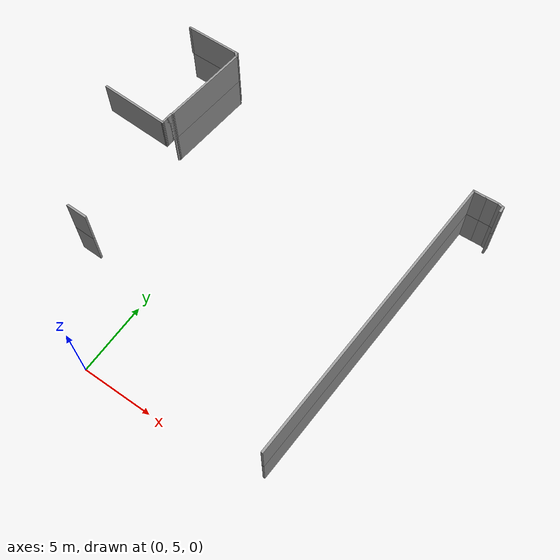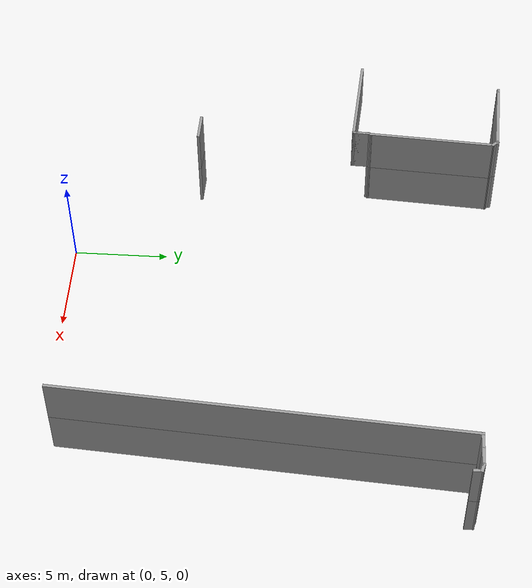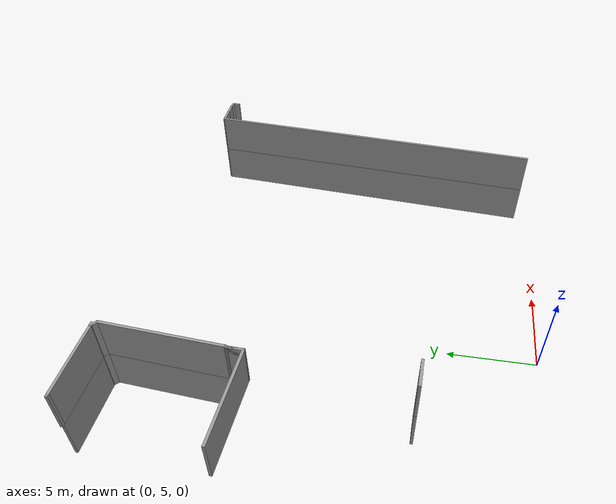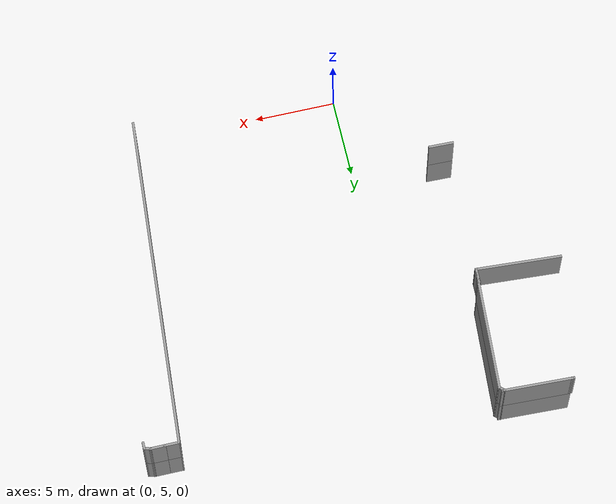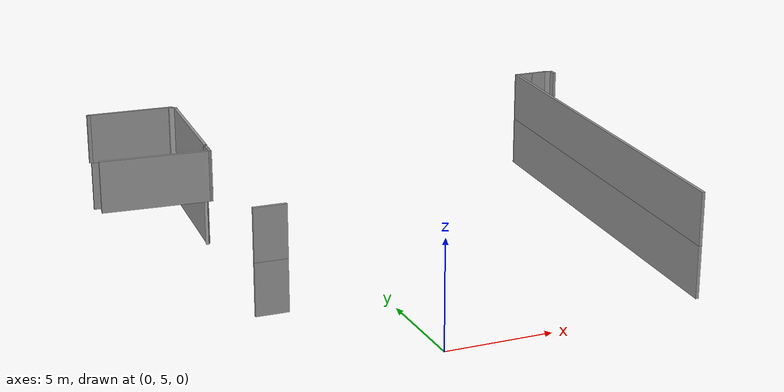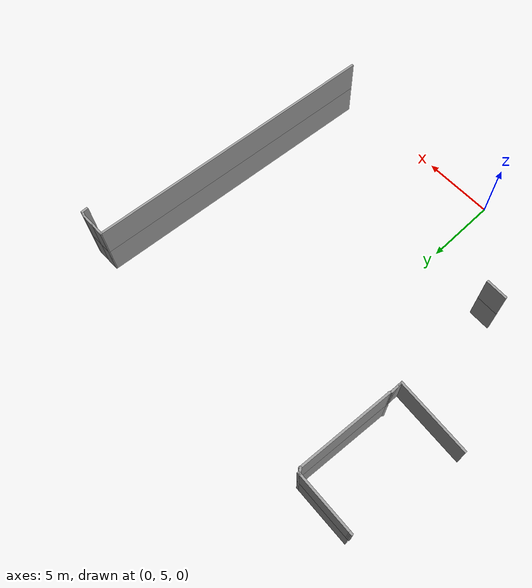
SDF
<sdf version="1.7">
 <model name="EnvDC01">
  <link name="Wall_257">
   <pose>-7.00626 27.834 0 0 0 -0.041325</pose>
   <visual name="Wall_257_Visual">
    <pose>0 0 1.25 0 -0 0</pose>
    <geometry><box><size>4.20657 0.15 2.5</size></box></geometry>
    <material>
     <script><uri>file://media/materials/scripts/gazebo.material</uri><name>Gazebo/Grey</name></script>
     <ambient>1 1 1 1</ambient>
     <shader type="pixel"/>
    </material>
    <meta><layer>0</layer></meta>
   </visual>
   <collision name="Wall_257_Collision">
    <pose>0 0 1.25 0 -0 0</pose>
    <geometry><box><size>4.20657 0.15 2.5</size></box></geometry>
    <surface>
     <friction>
      <ode><mu>1</mu><mu2>1</mu2><fdir1>0 0 0</fdir1><slip1>0</slip1><slip2>0</slip2></ode>
      <torsional>
       <coefficient>1</coefficient>
       <patch_radius>0</patch_radius>
       <surface_radius>0</surface_radius>
       <use_patch_radius>1</use_patch_radius>
       <ode><slip>0</slip></ode>
      </torsional>
     </friction>
     <bounce><restitution_coefficient>0</restitution_coefficient><threshold>1e+06</threshold></bounce>
     <contact>
      <collide_without_contact>0</collide_without_contact>
      <collide_without_contact_bitmask>1</collide_without_contact_bitmask>
      <collide_bitmask>1</collide_bitmask>
      <ode>
       <soft_cfm>0</soft_cfm>
       <soft_erp>0.2</soft_erp>
       <kp>1e+13</kp>
       <kd>1</kd>
       <max_vel>0.01</max_vel>
       <min_depth>0</min_depth>
      </ode>
      <bullet>
       <split_impulse>1</split_impulse>
       <split_impulse_penetration_threshold>-0.01</split_impulse_penetration_threshold>
       <soft_cfm>0</soft_cfm>
       <soft_erp>0.2</soft_erp>
       <kp>1e+13</kp>
       <kd>1</kd>
      </bullet>
     </contact>
    </surface>
   </collision>
  </link>
  <link name="Wall_258">
   <pose>-4.9297 27.7502 0 0 -0 0</pose>
   <visual name="Wall_258_Visual">
    <pose>0 0 1.25 0 -0 0</pose>
    <geometry><box><size>0.25 0.15 2.5</size></box></geometry>
    <material>
     <script><uri>file://media/materials/scripts/gazebo.material</uri><name>Gazebo/Grey</name></script>
     <ambient>1 1 1 1</ambient>
     <shader type="pixel"/>
    </material>
    <meta><layer>0</layer></meta>
   </visual>
   <collision name="Wall_258_Collision">
    <pose>0 0 1.25 0 -0 0</pose>
    <geometry><box><size>0.25 0.15 2.5</size></box></geometry>
    <surface>
     <friction>
      <ode><mu>1</mu><mu2>1</mu2><fdir1>0 0 0</fdir1><slip1>0</slip1><slip2>0</slip2></ode>
      <torsional>
       <coefficient>1</coefficient>
       <patch_radius>0</patch_radius>
       <surface_radius>0</surface_radius>
       <use_patch_radius>1</use_patch_radius>
       <ode><slip>0</slip></ode>
      </torsional>
     </friction>
     <bounce><restitution_coefficient>0</restitution_coefficient><threshold>1e+06</threshold></bounce>
     <contact>
      <collide_without_contact>0</collide_without_contact>
      <collide_without_contact_bitmask>1</collide_without_contact_bitmask>
      <collide_bitmask>1</collide_bitmask>
      <ode>
       <soft_cfm>0</soft_cfm>
       <soft_erp>0.2</soft_erp>
       <kp>1e+13</kp>
       <kd>1</kd>
       <max_vel>0.01</max_vel>
       <min_depth>0</min_depth>
      </ode>
      <bullet>
       <split_impulse>1</split_impulse>
       <split_impulse_penetration_threshold>-0.01</split_impulse_penetration_threshold>
       <soft_cfm>0</soft_cfm>
       <soft_erp>0.2</soft_erp>
       <kp>1e+13</kp>
       <kd>1</kd>
      </bullet>
     </contact>
    </surface>
   </collision>
  </link>
  <link name="Wall_260">
   <pose>-4.85596 27.6265 0 0 0 -0.785398</pose>
   <visual name="Wall_260_Visual">
    <pose>0 0 1.25 0 -0 0</pose>
    <geometry><box><size>0.5 0.15 2.5</size></box></geometry>
    <material>
     <script><uri>file://media/materials/scripts/gazebo.material</uri><name>Gazebo/Grey</name></script>
     <ambient>1 1 1 1</ambient>
     <shader type="pixel"/>
    </material>
    <meta><layer>0</layer></meta>
   </visual>
   <collision name="Wall_260_Collision">
    <pose>0 0 1.25 0 -0 0</pose>
    <geometry><box><size>0.5 0.15 2.5</size></box></geometry>
    <surface>
     <friction>
      <ode><mu>1</mu><mu2>1</mu2><fdir1>0 0 0</fdir1><slip1>0</slip1><slip2>0</slip2></ode>
      <torsional>
       <coefficient>1</coefficient>
       <patch_radius>0</patch_radius>
       <surface_radius>0</surface_radius>
       <use_patch_radius>1</use_patch_radius>
       <ode><slip>0</slip></ode>
      </torsional>
     </friction>
     <bounce><restitution_coefficient>0</restitution_coefficient><threshold>1e+06</threshold></bounce>
     <contact>
      <collide_without_contact>0</collide_without_contact>
      <collide_without_contact_bitmask>1</collide_without_contact_bitmask>
      <collide_bitmask>1</collide_bitmask>
      <ode>
       <soft_cfm>0</soft_cfm>
       <soft_erp>0.2</soft_erp>
       <kp>1e+13</kp>
       <kd>1</kd>
       <max_vel>0.01</max_vel>
       <min_depth>0</min_depth>
      </ode>
      <bullet>
       <split_impulse>1</split_impulse>
       <split_impulse_penetration_threshold>-0.01</split_impulse_penetration_threshold>
       <soft_cfm>0</soft_cfm>
       <soft_erp>0.2</soft_erp>
       <kp>1e+13</kp>
       <kd>1</kd>
      </bullet>
     </contact>
    </surface>
   </collision>
  </link>
  <link name="Wall_261">
   <pose>-4.96918 24.2046 0 0 0 -1.64252</pose>
   <visual name="Wall_261_Visual">
    <pose>0 0 1.25 0 -0 0</pose>
    <geometry><box><size>6.76321 0.15 2.5</size></box></geometry>
    <material>
     <script><uri>file://media/materials/scripts/gazebo.material</uri><name>Gazebo/Grey</name></script>
     <ambient>1 1 1 1</ambient>
     <shader type="pixel"/>
    </material>
    <meta><layer>0</layer></meta>
   </visual>
   <collision name="Wall_261_Collision">
    <pose>0 0 1.25 0 -0 0</pose>
    <geometry><box><size>6.76321 0.15 2.5</size></box></geometry>
    <surface>
     <friction>
      <ode><mu>1</mu><mu2>1</mu2><fdir1>0 0 0</fdir1><slip1>0</slip1><slip2>0</slip2></ode>
      <torsional>
       <coefficient>1</coefficient>
       <patch_radius>0</patch_radius>
       <surface_radius>0</surface_radius>
       <use_patch_radius>1</use_patch_radius>
       <ode><slip>0</slip></ode>
      </torsional>
     </friction>
     <bounce><restitution_coefficient>0</restitution_coefficient><threshold>1e+06</threshold></bounce>
     <contact>
      <collide_without_contact>0</collide_without_contact>
      <collide_without_contact_bitmask>1</collide_without_contact_bitmask>
      <collide_bitmask>1</collide_bitmask>
      <ode>
       <soft_cfm>0</soft_cfm>
       <soft_erp>0.2</soft_erp>
       <kp>1e+13</kp>
       <kd>1</kd>
       <max_vel>0.01</max_vel>
       <min_depth>0</min_depth>
      </ode>
      <bullet>
       <split_impulse>1</split_impulse>
       <split_impulse_penetration_threshold>-0.01</split_impulse_penetration_threshold>
       <soft_cfm>0</soft_cfm>
       <soft_erp>0.2</soft_erp>
       <kp>1e+13</kp>
       <kd>1</kd>
      </bullet>
     </contact>
    </surface>
   </collision>
  </link>
  <link name="Wall_262">
   <pose>-5.23115 20.8632 0 0 0 -2.0944</pose>
   <visual name="Wall_262_Visual">
    <pose>0 0 1.25 0 -0 0</pose>
    <geometry><box><size>0.25 0.15 2.5</size></box></geometry>
    <material>
     <script><uri>file://media/materials/scripts/gazebo.material</uri><name>Gazebo/Grey</name></script>
     <ambient>1 1 1 1</ambient>
     <shader type="pixel"/>
    </material>
    <meta><layer>0</layer></meta>
   </visual>
   <collision name="Wall_262_Collision">
    <pose>0 0 1.25 0 -0 0</pose>
    <geometry><box><size>0.25 0.15 2.5</size></box></geometry>
    <surface>
     <friction>
      <ode><mu>1</mu><mu2>1</mu2><fdir1>0 0 0</fdir1><slip1>0</slip1><slip2>0</slip2></ode>
      <torsional>
       <coefficient>1</coefficient>
       <patch_radius>0</patch_radius>
       <surface_radius>0</surface_radius>
       <use_patch_radius>1</use_patch_radius>
       <ode><slip>0</slip></ode>
      </torsional>
     </friction>
     <bounce><restitution_coefficient>0</restitution_coefficient><threshold>1e+06</threshold></bounce>
     <contact>
      <collide_without_contact>0</collide_without_contact>
      <collide_without_contact_bitmask>1</collide_without_contact_bitmask>
      <collide_bitmask>1</collide_bitmask>
      <ode>
       <soft_cfm>0</soft_cfm>
       <soft_erp>0.2</soft_erp>
       <kp>1e+13</kp>
       <kd>1</kd>
       <max_vel>0.01</max_vel>
       <min_depth>0</min_depth>
      </ode>
      <bullet>
       <split_impulse>1</split_impulse>
       <split_impulse_penetration_threshold>-0.01</split_impulse_penetration_threshold>
       <soft_cfm>0</soft_cfm>
       <soft_erp>0.2</soft_erp>
       <kp>1e+13</kp>
       <kd>1</kd>
      </bullet>
     </contact>
    </surface>
   </collision>
  </link>
  <link name="Wall_269">
   <pose>16.2758 26.2797 2.5 0 0 -1.5708</pose>
   <visual name="Wall_269_Visual">
    <pose>0 0 1.25 0 -0 0</pose>
    <geometry><box><size>0.5 0.15 2.5</size></box></geometry>
    <material>
     <script><uri>file://media/materials/scripts/gazebo.material</uri><name>Gazebo/Grey</name></script>
     <ambient>1 1 1 1</ambient>
     <shader type="pixel"/>
    </material>
    <meta><layer>1</layer></meta>
   </visual>
   <collision name="Wall_269_Collision">
    <pose>0 0 1.25 0 -0 0</pose>
    <geometry><box><size>0.5 0.15 2.5</size></box></geometry>
    <surface>
     <friction>
      <ode><mu>1</mu><mu2>1</mu2><fdir1>0 0 0</fdir1><slip1>0</slip1><slip2>0</slip2></ode>
      <torsional>
       <coefficient>1</coefficient>
       <patch_radius>0</patch_radius>
       <surface_radius>0</surface_radius>
       <use_patch_radius>1</use_patch_radius>
       <ode><slip>0</slip></ode>
      </torsional>
     </friction>
     <bounce><restitution_coefficient>0</restitution_coefficient><threshold>1e+06</threshold></bounce>
     <contact>
      <collide_without_contact>0</collide_without_contact>
      <collide_without_contact_bitmask>1</collide_without_contact_bitmask>
      <collide_bitmask>1</collide_bitmask>
      <ode>
       <soft_cfm>0</soft_cfm>
       <soft_erp>0.2</soft_erp>
       <kp>1e+13</kp>
       <kd>1</kd>
       <max_vel>0.01</max_vel>
       <min_depth>0</min_depth>
      </ode>
      <bullet>
       <split_impulse>1</split_impulse>
       <split_impulse_penetration_threshold>-0.01</split_impulse_penetration_threshold>
       <soft_cfm>0</soft_cfm>
       <soft_erp>0.2</soft_erp>
       <kp>1e+13</kp>
       <kd>1</kd>
      </bullet>
     </contact>
    </surface>
   </collision>
  </link>
  <link name="Wall_270">
   <pose>16.1067 26.5 2.5 0 -0 2.87979</pose>
   <visual name="Wall_270_Visual">
    <pose>0 0 1.25 0 -0 0</pose>
    <geometry><box><size>0.5 0.15 2.5</size></box></geometry>
    <material>
     <script><uri>file://media/materials/scripts/gazebo.material</uri><name>Gazebo/Grey</name></script>
     <ambient>1 1 1 1</ambient>
     <shader type="pixel"/>
    </material>
    <meta><layer>1</layer></meta>
   </visual>
   <collision name="Wall_270_Collision">
    <pose>0 0 1.25 0 -0 0</pose>
    <geometry><box><size>0.5 0.15 2.5</size></box></geometry>
    <surface>
     <friction>
      <ode><mu>1</mu><mu2>1</mu2><fdir1>0 0 0</fdir1><slip1>0</slip1><slip2>0</slip2></ode>
      <torsional>
       <coefficient>1</coefficient>
       <patch_radius>0</patch_radius>
       <surface_radius>0</surface_radius>
       <use_patch_radius>1</use_patch_radius>
       <ode><slip>0</slip></ode>
      </torsional>
     </friction>
     <bounce><restitution_coefficient>0</restitution_coefficient><threshold>1e+06</threshold></bounce>
     <contact>
      <collide_without_contact>0</collide_without_contact>
      <collide_without_contact_bitmask>1</collide_without_contact_bitmask>
      <collide_bitmask>1</collide_bitmask>
      <ode>
       <soft_cfm>0</soft_cfm>
       <soft_erp>0.2</soft_erp>
       <kp>1e+13</kp>
       <kd>1</kd>
       <max_vel>0.01</max_vel>
       <min_depth>0</min_depth>
      </ode>
      <bullet>
       <split_impulse>1</split_impulse>
       <split_impulse_penetration_threshold>-0.01</split_impulse_penetration_threshold>
       <soft_cfm>0</soft_cfm>
       <soft_erp>0.2</soft_erp>
       <kp>1e+13</kp>
       <kd>1</kd>
      </bullet>
     </contact>
    </surface>
   </collision>
  </link>
  <link name="Wall_271">
   <pose>15.5127 26.5453 2.5 0 -0 3.14159</pose>
   <visual name="Wall_271_Visual">
    <pose>0 0 1.25 0 -0 0</pose>
    <geometry><box><size>1 0.15 2.5</size></box></geometry>
    <material>
     <script><uri>file://media/materials/scripts/gazebo.material</uri><name>Gazebo/Grey</name></script>
     <ambient>1 1 1 1</ambient>
     <shader type="pixel"/>
    </material>
    <meta><layer>1</layer></meta>
   </visual>
   <collision name="Wall_271_Collision">
    <pose>0 0 1.25 0 -0 0</pose>
    <geometry><box><size>1 0.15 2.5</size></box></geometry>
    <surface>
     <friction>
      <ode><mu>1</mu><mu2>1</mu2><fdir1>0 0 0</fdir1><slip1>0</slip1><slip2>0</slip2></ode>
      <torsional>
       <coefficient>1</coefficient>
       <patch_radius>0</patch_radius>
       <surface_radius>0</surface_radius>
       <use_patch_radius>1</use_patch_radius>
       <ode><slip>0</slip></ode>
      </torsional>
     </friction>
     <bounce><restitution_coefficient>0</restitution_coefficient><threshold>1e+06</threshold></bounce>
     <contact>
      <collide_without_contact>0</collide_without_contact>
      <collide_without_contact_bitmask>1</collide_without_contact_bitmask>
      <collide_bitmask>1</collide_bitmask>
      <ode>
       <soft_cfm>0</soft_cfm>
       <soft_erp>0.2</soft_erp>
       <kp>1e+13</kp>
       <kd>1</kd>
       <max_vel>0.01</max_vel>
       <min_depth>0</min_depth>
      </ode>
      <bullet>
       <split_impulse>1</split_impulse>
       <split_impulse_penetration_threshold>-0.01</split_impulse_penetration_threshold>
       <soft_cfm>0</soft_cfm>
       <soft_erp>0.2</soft_erp>
       <kp>1e+13</kp>
       <kd>1</kd>
      </bullet>
     </contact>
    </surface>
   </collision>
  </link>
  <link name="Wall_272">
   <pose>14.6627 26.5453 2.5 0 -0 3.14159</pose>
   <visual name="Wall_272_Visual">
    <pose>0 0 1.25 0 -0 0</pose>
    <geometry><box><size>1 0.15 2.5</size></box></geometry>
    <material>
     <script><uri>file://media/materials/scripts/gazebo.material</uri><name>Gazebo/Grey</name></script>
     <ambient>1 1 1 1</ambient>
     <shader type="pixel"/>
    </material>
    <meta><layer>1</layer></meta>
   </visual>
   <collision name="Wall_272_Collision">
    <pose>0 0 1.25 0 -0 0</pose>
    <geometry><box><size>1 0.15 2.5</size></box></geometry>
    <surface>
     <friction>
      <ode><mu>1</mu><mu2>1</mu2><fdir1>0 0 0</fdir1><slip1>0</slip1><slip2>0</slip2></ode>
      <torsional>
       <coefficient>1</coefficient>
       <patch_radius>0</patch_radius>
       <surface_radius>0</surface_radius>
       <use_patch_radius>1</use_patch_radius>
       <ode><slip>0</slip></ode>
      </torsional>
     </friction>
     <bounce><restitution_coefficient>0</restitution_coefficient><threshold>1e+06</threshold></bounce>
     <contact>
      <collide_without_contact>0</collide_without_contact>
      <collide_without_contact_bitmask>1</collide_without_contact_bitmask>
      <collide_bitmask>1</collide_bitmask>
      <ode>
       <soft_cfm>0</soft_cfm>
       <soft_erp>0.2</soft_erp>
       <kp>1e+13</kp>
       <kd>1</kd>
       <max_vel>0.01</max_vel>
       <min_depth>0</min_depth>
      </ode>
      <bullet>
       <split_impulse>1</split_impulse>
       <split_impulse_penetration_threshold>-0.01</split_impulse_penetration_threshold>
       <soft_cfm>0</soft_cfm>
       <soft_erp>0.2</soft_erp>
       <kp>1e+13</kp>
       <kd>1</kd>
      </bullet>
     </contact>
    </surface>
   </collision>
  </link>
  <link name="Wall_273">
   <pose>13.477 16.2089 2.5 0 0 -1.64426</pose>
   <visual name="Wall_273_Visual">
    <pose>0 0 1.25 0 -0 0</pose>
    <geometry><box><size>20.8787 0.15 2.5</size></box></geometry>
    <material>
     <script><uri>file://media/materials/scripts/gazebo.material</uri><name>Gazebo/Grey</name></script>
     <ambient>1 1 1 1</ambient>
     <shader type="pixel"/>
    </material>
    <meta><layer>1</layer></meta>
   </visual>
   <collision name="Wall_273_Collision">
    <pose>0 0 1.25 0 -0 0</pose>
    <geometry><box><size>20.8787 0.15 2.5</size></box></geometry>
    <surface>
     <friction>
      <ode><mu>1</mu><mu2>1</mu2><fdir1>0 0 0</fdir1><slip1>0</slip1><slip2>0</slip2></ode>
      <torsional>
       <coefficient>1</coefficient>
       <patch_radius>0</patch_radius>
       <surface_radius>0</surface_radius>
       <use_patch_radius>1</use_patch_radius>
       <ode><slip>0</slip></ode>
      </torsional>
     </friction>
     <bounce><restitution_coefficient>0</restitution_coefficient><threshold>1e+06</threshold></bounce>
     <contact>
      <collide_without_contact>0</collide_without_contact>
      <collide_without_contact_bitmask>1</collide_without_contact_bitmask>
      <collide_bitmask>1</collide_bitmask>
      <ode>
       <soft_cfm>0</soft_cfm>
       <soft_erp>0.2</soft_erp>
       <kp>1e+13</kp>
       <kd>1</kd>
       <max_vel>0.01</max_vel>
       <min_depth>0</min_depth>
      </ode>
      <bullet>
       <split_impulse>1</split_impulse>
       <split_impulse_penetration_threshold>-0.01</split_impulse_penetration_threshold>
       <soft_cfm>0</soft_cfm>
       <soft_erp>0.2</soft_erp>
       <kp>1e+13</kp>
       <kd>1</kd>
      </bullet>
     </contact>
    </surface>
   </collision>
  </link>
  <link name="Wall_307">
   <pose>-5.20338 11.5416 2.5 0 -0 3.1167</pose>
   <visual name="Wall_307_Visual">
    <pose>0 0 1.25 0 -0 0</pose>
    <geometry><box><size>1.54368 0.15 2.5</size></box></geometry>
    <material>
     <script><uri>file://media/materials/scripts/gazebo.material</uri><name>Gazebo/Grey</name></script>
     <ambient>1 1 1 1</ambient>
     <shader type="pixel"/>
    </material>
    <meta><layer>1</layer></meta>
   </visual>
   <collision name="Wall_307_Collision">
    <pose>0 0 1.25 0 -0 0</pose>
    <geometry><box><size>1.54368 0.15 2.5</size></box></geometry>
    <surface>
     <friction>
      <ode><mu>1</mu><mu2>1</mu2><fdir1>0 0 0</fdir1><slip1>0</slip1><slip2>0</slip2></ode>
      <torsional>
       <coefficient>1</coefficient>
       <patch_radius>0</patch_radius>
       <surface_radius>0</surface_radius>
       <use_patch_radius>1</use_patch_radius>
       <ode><slip>0</slip></ode>
      </torsional>
     </friction>
     <bounce><restitution_coefficient>0</restitution_coefficient><threshold>1e+06</threshold></bounce>
     <contact>
      <collide_without_contact>0</collide_without_contact>
      <collide_without_contact_bitmask>1</collide_without_contact_bitmask>
      <collide_bitmask>1</collide_bitmask>
      <ode>
       <soft_cfm>0</soft_cfm>
       <soft_erp>0.2</soft_erp>
       <kp>1e+13</kp>
       <kd>1</kd>
       <max_vel>0.01</max_vel>
       <min_depth>0</min_depth>
      </ode>
      <bullet>
       <split_impulse>1</split_impulse>
       <split_impulse_penetration_threshold>-0.01</split_impulse_penetration_threshold>
       <soft_cfm>0</soft_cfm>
       <soft_erp>0.2</soft_erp>
       <kp>1e+13</kp>
       <kd>1</kd>
      </bullet>
     </contact>
    </surface>
   </collision>
  </link>
  <link name="Wall_417">
   <pose>-9.08281 27.9178 2.5 0 -0 0</pose>
   <visual name="Wall_417_Visual">
    <pose>0 0 1.25 0 -0 0</pose>
    <geometry><box><size>0.25 0.15 2.5</size></box></geometry>
    <material>
     <script><uri>file://media/materials/scripts/gazebo.material</uri><name>Gazebo/Grey</name></script>
     <ambient>1 1 1 1</ambient>
     <shader type="pixel"/>
    </material>
    <meta><layer>1</layer></meta>
   </visual>
   <collision name="Wall_417_Collision">
    <pose>0 0 1.25 0 -0 0</pose>
    <geometry><box><size>0.25 0.15 2.5</size></box></geometry>
    <surface>
     <friction>
      <ode><mu>1</mu><mu2>1</mu2><fdir1>0 0 0</fdir1><slip1>0</slip1><slip2>0</slip2></ode>
      <torsional>
       <coefficient>1</coefficient>
       <patch_radius>0</patch_radius>
       <surface_radius>0</surface_radius>
       <use_patch_radius>1</use_patch_radius>
       <ode><slip>0</slip></ode>
      </torsional>
     </friction>
     <bounce><restitution_coefficient>0</restitution_coefficient><threshold>1e+06</threshold></bounce>
     <contact>
      <collide_without_contact>0</collide_without_contact>
      <collide_without_contact_bitmask>1</collide_without_contact_bitmask>
      <collide_bitmask>1</collide_bitmask>
      <ode>
       <soft_cfm>0</soft_cfm>
       <soft_erp>0.2</soft_erp>
       <kp>1e+13</kp>
       <kd>1</kd>
       <max_vel>0.01</max_vel>
       <min_depth>0</min_depth>
      </ode>
      <bullet>
       <split_impulse>1</split_impulse>
       <split_impulse_penetration_threshold>-0.01</split_impulse_penetration_threshold>
       <soft_cfm>0</soft_cfm>
       <soft_erp>0.2</soft_erp>
       <kp>1e+13</kp>
       <kd>1</kd>
      </bullet>
     </contact>
    </surface>
   </collision>
  </link>
  <link name="Wall_418">
   <pose>-7.00626 27.834 2.5 0 0 -0.041325</pose>
   <visual name="Wall_418_Visual">
    <pose>0 0 1.25 0 -0 0</pose>
    <geometry><box><size>4.20657 0.15 2.5</size></box></geometry>
    <material>
     <script><uri>file://media/materials/scripts/gazebo.material</uri><name>Gazebo/Grey</name></script>
     <ambient>1 1 1 1</ambient>
     <shader type="pixel"/>
    </material>
    <meta><layer>1</layer></meta>
   </visual>
   <collision name="Wall_418_Collision">
    <pose>0 0 1.25 0 -0 0</pose>
    <geometry><box><size>4.20657 0.15 2.5</size></box></geometry>
    <surface>
     <friction>
      <ode><mu>1</mu><mu2>1</mu2><fdir1>0 0 0</fdir1><slip1>0</slip1><slip2>0</slip2></ode>
      <torsional>
       <coefficient>1</coefficient>
       <patch_radius>0</patch_radius>
       <surface_radius>0</surface_radius>
       <use_patch_radius>1</use_patch_radius>
       <ode><slip>0</slip></ode>
      </torsional>
     </friction>
     <bounce><restitution_coefficient>0</restitution_coefficient><threshold>1e+06</threshold></bounce>
     <contact>
      <collide_without_contact>0</collide_without_contact>
      <collide_without_contact_bitmask>1</collide_without_contact_bitmask>
      <collide_bitmask>1</collide_bitmask>
      <ode>
       <soft_cfm>0</soft_cfm>
       <soft_erp>0.2</soft_erp>
       <kp>1e+13</kp>
       <kd>1</kd>
       <max_vel>0.01</max_vel>
       <min_depth>0</min_depth>
      </ode>
      <bullet>
       <split_impulse>1</split_impulse>
       <split_impulse_penetration_threshold>-0.01</split_impulse_penetration_threshold>
       <soft_cfm>0</soft_cfm>
       <soft_erp>0.2</soft_erp>
       <kp>1e+13</kp>
       <kd>1</kd>
      </bullet>
     </contact>
    </surface>
   </collision>
  </link>
  <link name="Wall_419">
   <pose>-4.9297 27.7502 2.5 0 -0 0</pose>
   <visual name="Wall_419_Visual">
    <pose>0 0 1.25 0 -0 0</pose>
    <geometry><box><size>0.25 0.15 2.5</size></box></geometry>
    <material>
     <script><uri>file://media/materials/scripts/gazebo.material</uri><name>Gazebo/Grey</name></script>
     <ambient>1 1 1 1</ambient>
     <shader type="pixel"/>
    </material>
    <meta><layer>1</layer></meta>
   </visual>
   <collision name="Wall_419_Collision">
    <pose>0 0 1.25 0 -0 0</pose>
    <geometry><box><size>0.25 0.15 2.5</size></box></geometry>
    <surface>
     <friction>
      <ode><mu>1</mu><mu2>1</mu2><fdir1>0 0 0</fdir1><slip1>0</slip1><slip2>0</slip2></ode>
      <torsional>
       <coefficient>1</coefficient>
       <patch_radius>0</patch_radius>
       <surface_radius>0</surface_radius>
       <use_patch_radius>1</use_patch_radius>
       <ode><slip>0</slip></ode>
      </torsional>
     </friction>
     <bounce><restitution_coefficient>0</restitution_coefficient><threshold>1e+06</threshold></bounce>
     <contact>
      <collide_without_contact>0</collide_without_contact>
      <collide_without_contact_bitmask>1</collide_without_contact_bitmask>
      <collide_bitmask>1</collide_bitmask>
      <ode>
       <soft_cfm>0</soft_cfm>
       <soft_erp>0.2</soft_erp>
       <kp>1e+13</kp>
       <kd>1</kd>
       <max_vel>0.01</max_vel>
       <min_depth>0</min_depth>
      </ode>
      <bullet>
       <split_impulse>1</split_impulse>
       <split_impulse_penetration_threshold>-0.01</split_impulse_penetration_threshold>
       <soft_cfm>0</soft_cfm>
       <soft_erp>0.2</soft_erp>
       <kp>1e+13</kp>
       <kd>1</kd>
      </bullet>
     </contact>
    </surface>
   </collision>
  </link>
  <link name="Wall_420">
   <pose>-4.85596 27.6265 2.5 0 0 -0.785398</pose>
   <visual name="Wall_420_Visual">
    <pose>0 0 1.25 0 -0 0</pose>
    <geometry><box><size>0.5 0.15 2.5</size></box></geometry>
    <material>
     <script><uri>file://media/materials/scripts/gazebo.material</uri><name>Gazebo/Grey</name></script>
     <ambient>1 1 1 1</ambient>
     <shader type="pixel"/>
    </material>
    <meta><layer>1</layer></meta>
   </visual>
   <collision name="Wall_420_Collision">
    <pose>0 0 1.25 0 -0 0</pose>
    <geometry><box><size>0.5 0.15 2.5</size></box></geometry>
    <surface>
     <friction>
      <ode><mu>1</mu><mu2>1</mu2><fdir1>0 0 0</fdir1><slip1>0</slip1><slip2>0</slip2></ode>
      <torsional>
       <coefficient>1</coefficient>
       <patch_radius>0</patch_radius>
       <surface_radius>0</surface_radius>
       <use_patch_radius>1</use_patch_radius>
       <ode><slip>0</slip></ode>
      </torsional>
     </friction>
     <bounce><restitution_coefficient>0</restitution_coefficient><threshold>1e+06</threshold></bounce>
     <contact>
      <collide_without_contact>0</collide_without_contact>
      <collide_without_contact_bitmask>1</collide_without_contact_bitmask>
      <collide_bitmask>1</collide_bitmask>
      <ode>
       <soft_cfm>0</soft_cfm>
       <soft_erp>0.2</soft_erp>
       <kp>1e+13</kp>
       <kd>1</kd>
       <max_vel>0.01</max_vel>
       <min_depth>0</min_depth>
      </ode>
      <bullet>
       <split_impulse>1</split_impulse>
       <split_impulse_penetration_threshold>-0.01</split_impulse_penetration_threshold>
       <soft_cfm>0</soft_cfm>
       <soft_erp>0.2</soft_erp>
       <kp>1e+13</kp>
       <kd>1</kd>
      </bullet>
     </contact>
    </surface>
   </collision>
  </link>
  <link name="Wall_421">
   <pose>-4.95651 24.2016 2.5 0 0 -1.63864</pose>
   <visual name="Wall_421_Visual">
    <pose>0 0 1.25 0 -0 0</pose>
    <geometry><box><size>6.76739 0.15 2.5</size></box></geometry>
    <material>
     <script><uri>file://media/materials/scripts/gazebo.material</uri><name>Gazebo/Grey</name></script>
     <ambient>1 1 1 1</ambient>
     <shader type="pixel"/>
    </material>
    <meta><layer>1</layer></meta>
   </visual>
   <collision name="Wall_421_Collision">
    <pose>0 0 1.25 0 -0 0</pose>
    <geometry><box><size>6.76739 0.15 2.5</size></box></geometry>
    <surface>
     <friction>
      <ode><mu>1</mu><mu2>1</mu2><fdir1>0 0 0</fdir1><slip1>0</slip1><slip2>0</slip2></ode>
      <torsional>
       <coefficient>1</coefficient>
       <patch_radius>0</patch_radius>
       <surface_radius>0</surface_radius>
       <use_patch_radius>1</use_patch_radius>
       <ode><slip>0</slip></ode>
      </torsional>
     </friction>
     <bounce><restitution_coefficient>0</restitution_coefficient><threshold>1e+06</threshold></bounce>
     <contact>
      <collide_without_contact>0</collide_without_contact>
      <collide_without_contact_bitmask>1</collide_without_contact_bitmask>
      <collide_bitmask>1</collide_bitmask>
      <ode>
       <soft_cfm>0</soft_cfm>
       <soft_erp>0.2</soft_erp>
       <kp>1e+13</kp>
       <kd>1</kd>
       <max_vel>0.01</max_vel>
       <min_depth>0</min_depth>
      </ode>
      <bullet>
       <split_impulse>1</split_impulse>
       <split_impulse_penetration_threshold>-0.01</split_impulse_penetration_threshold>
       <soft_cfm>0</soft_cfm>
       <soft_erp>0.2</soft_erp>
       <kp>1e+13</kp>
       <kd>1</kd>
      </bullet>
     </contact>
    </surface>
   </collision>
  </link>
  <link name="Wall_422">
   <pose>-5.20581 20.8316 2.5 0 0 -1.93303</pose>
   <visual name="Wall_422_Visual">
    <pose>0 0 1.25 0 -0 0</pose>
    <geometry><box><size>0.291098 0.15 2.5</size></box></geometry>
    <material>
     <script><uri>file://media/materials/scripts/gazebo.material</uri><name>Gazebo/Grey</name></script>
     <ambient>1 1 1 1</ambient>
     <shader type="pixel"/>
    </material>
    <meta><layer>1</layer></meta>
   </visual>
   <collision name="Wall_422_Collision">
    <pose>0 0 1.25 0 -0 0</pose>
    <geometry><box><size>0.291098 0.15 2.5</size></box></geometry>
    <surface>
     <friction>
      <ode><mu>1</mu><mu2>1</mu2><fdir1>0 0 0</fdir1><slip1>0</slip1><slip2>0</slip2></ode>
      <torsional>
       <coefficient>1</coefficient>
       <patch_radius>0</patch_radius>
       <surface_radius>0</surface_radius>
       <use_patch_radius>1</use_patch_radius>
       <ode><slip>0</slip></ode>
      </torsional>
     </friction>
     <bounce><restitution_coefficient>0</restitution_coefficient><threshold>1e+06</threshold></bounce>
     <contact>
      <collide_without_contact>0</collide_without_contact>
      <collide_without_contact_bitmask>1</collide_without_contact_bitmask>
      <collide_bitmask>1</collide_bitmask>
      <ode>
       <soft_cfm>0</soft_cfm>
       <soft_erp>0.2</soft_erp>
       <kp>1e+13</kp>
       <kd>1</kd>
       <max_vel>0.01</max_vel>
       <min_depth>0</min_depth>
      </ode>
      <bullet>
       <split_impulse>1</split_impulse>
       <split_impulse_penetration_threshold>-0.01</split_impulse_penetration_threshold>
       <soft_cfm>0</soft_cfm>
       <soft_erp>0.2</soft_erp>
       <kp>1e+13</kp>
       <kd>1</kd>
      </bullet>
     </contact>
    </surface>
   </collision>
  </link>
  <link name="Wall_428">
   <pose>-7.81335 20.1117 2.5 0 0 -0.064207</pose>
   <visual name="Wall_428_Visual">
    <pose>0 0 1.25 0 -0 0</pose>
    <geometry><box><size>5.27495 0.15 2.5</size></box></geometry>
    <material>
     <script><uri>file://media/materials/scripts/gazebo.material</uri><name>Gazebo/Grey</name></script>
     <ambient>1 1 1 1</ambient>
     <shader type="pixel"/>
    </material>
    <meta><layer>1</layer></meta>
   </visual>
   <collision name="Wall_428_Collision">
    <pose>0 0 1.25 0 -0 0</pose>
    <geometry><box><size>5.27495 0.15 2.5</size></box></geometry>
    <surface>
     <friction>
      <ode><mu>1</mu><mu2>1</mu2><fdir1>0 0 0</fdir1><slip1>0</slip1><slip2>0</slip2></ode>
      <torsional>
       <coefficient>1</coefficient>
       <patch_radius>0</patch_radius>
       <surface_radius>0</surface_radius>
       <use_patch_radius>1</use_patch_radius>
       <ode><slip>0</slip></ode>
      </torsional>
     </friction>
     <bounce><restitution_coefficient>0</restitution_coefficient><threshold>1e+06</threshold></bounce>
     <contact>
      <collide_without_contact>0</collide_without_contact>
      <collide_without_contact_bitmask>1</collide_without_contact_bitmask>
      <collide_bitmask>1</collide_bitmask>
      <ode>
       <soft_cfm>0</soft_cfm>
       <soft_erp>0.2</soft_erp>
       <kp>1e+13</kp>
       <kd>1</kd>
       <max_vel>0.01</max_vel>
       <min_depth>0</min_depth>
      </ode>
      <bullet>
       <split_impulse>1</split_impulse>
       <split_impulse_penetration_threshold>-0.01</split_impulse_penetration_threshold>
       <soft_cfm>0</soft_cfm>
       <soft_erp>0.2</soft_erp>
       <kp>1e+13</kp>
       <kd>1</kd>
      </bullet>
     </contact>
    </surface>
   </collision>
  </link>
  <link name="Wall_429">
   <pose>-5.24348 20.3579 2.5 0 -0 1.53995</pose>
   <visual name="Wall_429_Visual">
    <pose>0 0 1.25 0 -0 0</pose>
    <geometry><box><size>0.971759 0.15 2.5</size></box></geometry>
    <material>
     <script><uri>file://media/materials/scripts/gazebo.material</uri><name>Gazebo/Grey</name></script>
     <ambient>1 1 1 1</ambient>
     <shader type="pixel"/>
    </material>
    <meta><layer>1</layer></meta>
   </visual>
   <collision name="Wall_429_Collision">
    <pose>0 0 1.25 0 -0 0</pose>
    <geometry><box><size>0.971759 0.15 2.5</size></box></geometry>
    <surface>
     <friction>
      <ode><mu>1</mu><mu2>1</mu2><fdir1>0 0 0</fdir1><slip1>0</slip1><slip2>0</slip2></ode>
      <torsional>
       <coefficient>1</coefficient>
       <patch_radius>0</patch_radius>
       <surface_radius>0</surface_radius>
       <use_patch_radius>1</use_patch_radius>
       <ode><slip>0</slip></ode>
      </torsional>
     </friction>
     <bounce><restitution_coefficient>0</restitution_coefficient><threshold>1e+06</threshold></bounce>
     <contact>
      <collide_without_contact>0</collide_without_contact>
      <collide_without_contact_bitmask>1</collide_without_contact_bitmask>
      <collide_bitmask>1</collide_bitmask>
      <ode>
       <soft_cfm>0</soft_cfm>
       <soft_erp>0.2</soft_erp>
       <kp>1e+13</kp>
       <kd>1</kd>
       <max_vel>0.01</max_vel>
       <min_depth>0</min_depth>
      </ode>
      <bullet>
       <split_impulse>1</split_impulse>
       <split_impulse_penetration_threshold>-0.01</split_impulse_penetration_threshold>
       <soft_cfm>0</soft_cfm>
       <soft_erp>0.2</soft_erp>
       <kp>1e+13</kp>
       <kd>1</kd>
      </bullet>
     </contact>
    </surface>
   </collision>
  </link>
  <link name="Wall_430">
   <pose>-5.24348 20.3579 2.5 0 0 -1.60164</pose>
   <visual name="Wall_430_Visual">
    <pose>0 0 1.25 0 -0 0</pose>
    <geometry><box><size>0.971759 0.15 2.5</size></box></geometry>
    <material>
     <script><uri>file://media/materials/scripts/gazebo.material</uri><name>Gazebo/Grey</name></script>
     <ambient>1 1 1 1</ambient>
     <shader type="pixel"/>
    </material>
    <meta><layer>1</layer></meta>
   </visual>
   <collision name="Wall_430_Collision">
    <pose>0 0 1.25 0 -0 0</pose>
    <geometry><box><size>0.971759 0.15 2.5</size></box></geometry>
    <surface>
     <friction>
      <ode><mu>1</mu><mu2>1</mu2><fdir1>0 0 0</fdir1><slip1>0</slip1><slip2>0</slip2></ode>
      <torsional>
       <coefficient>1</coefficient>
       <patch_radius>0</patch_radius>
       <surface_radius>0</surface_radius>
       <use_patch_radius>1</use_patch_radius>
       <ode><slip>0</slip></ode>
      </torsional>
     </friction>
     <bounce><restitution_coefficient>0</restitution_coefficient><threshold>1e+06</threshold></bounce>
     <contact>
      <collide_without_contact>0</collide_without_contact>
      <collide_without_contact_bitmask>1</collide_without_contact_bitmask>
      <collide_bitmask>1</collide_bitmask>
      <ode>
       <soft_cfm>0</soft_cfm>
       <soft_erp>0.2</soft_erp>
       <kp>1e+13</kp>
       <kd>1</kd>
       <max_vel>0.01</max_vel>
       <min_depth>0</min_depth>
      </ode>
      <bullet>
       <split_impulse>1</split_impulse>
       <split_impulse_penetration_threshold>-0.01</split_impulse_penetration_threshold>
       <soft_cfm>0</soft_cfm>
       <soft_erp>0.2</soft_erp>
       <kp>1e+13</kp>
       <kd>1</kd>
      </bullet>
     </contact>
    </surface>
   </collision>
  </link>
  <link name="Wall_47">
   <pose>16.2758 26.2797 0 0 0 -1.5708</pose>
   <visual name="Wall_47_Visual">
    <pose>0 0 1.25 0 -0 0</pose>
    <geometry><box><size>0.5 0.15 2.5</size></box></geometry>
    <material>
     <script><uri>file://media/materials/scripts/gazebo.material</uri><name>Gazebo/Grey</name></script>
     <ambient>1 1 1 1</ambient>
     <shader type="pixel"/>
    </material>
    <meta><layer>0</layer></meta>
   </visual>
   <collision name="Wall_47_Collision">
    <pose>0 0 1.25 0 -0 0</pose>
    <geometry><box><size>0.5 0.15 2.5</size></box></geometry>
    <surface>
     <friction>
      <ode><mu>1</mu><mu2>1</mu2><fdir1>0 0 0</fdir1><slip1>0</slip1><slip2>0</slip2></ode>
      <torsional>
       <coefficient>1</coefficient>
       <patch_radius>0</patch_radius>
       <surface_radius>0</surface_radius>
       <use_patch_radius>1</use_patch_radius>
       <ode><slip>0</slip></ode>
      </torsional>
     </friction>
     <bounce><restitution_coefficient>0</restitution_coefficient><threshold>1e+06</threshold></bounce>
     <contact>
      <collide_without_contact>0</collide_without_contact>
      <collide_without_contact_bitmask>1</collide_without_contact_bitmask>
      <collide_bitmask>1</collide_bitmask>
      <ode>
       <soft_cfm>0</soft_cfm>
       <soft_erp>0.2</soft_erp>
       <kp>1e+13</kp>
       <kd>1</kd>
       <max_vel>0.01</max_vel>
       <min_depth>0</min_depth>
      </ode>
      <bullet>
       <split_impulse>1</split_impulse>
       <split_impulse_penetration_threshold>-0.01</split_impulse_penetration_threshold>
       <soft_cfm>0</soft_cfm>
       <soft_erp>0.2</soft_erp>
       <kp>1e+13</kp>
       <kd>1</kd>
      </bullet>
     </contact>
    </surface>
   </collision>
  </link>
  <link name="Wall_49">
   <pose>16.1067 26.5 0 0 -0 2.87979</pose>
   <visual name="Wall_49_Visual">
    <pose>0 0 1.25 0 -0 0</pose>
    <geometry><box><size>0.5 0.15 2.5</size></box></geometry>
    <material>
     <script><uri>file://media/materials/scripts/gazebo.material</uri><name>Gazebo/Grey</name></script>
     <ambient>1 1 1 1</ambient>
     <shader type="pixel"/>
    </material>
    <meta><layer>0</layer></meta>
   </visual>
   <collision name="Wall_49_Collision">
    <pose>0 0 1.25 0 -0 0</pose>
    <geometry><box><size>0.5 0.15 2.5</size></box></geometry>
    <surface>
     <friction>
      <ode><mu>1</mu><mu2>1</mu2><fdir1>0 0 0</fdir1><slip1>0</slip1><slip2>0</slip2></ode>
      <torsional>
       <coefficient>1</coefficient>
       <patch_radius>0</patch_radius>
       <surface_radius>0</surface_radius>
       <use_patch_radius>1</use_patch_radius>
       <ode><slip>0</slip></ode>
      </torsional>
     </friction>
     <bounce><restitution_coefficient>0</restitution_coefficient><threshold>1e+06</threshold></bounce>
     <contact>
      <collide_without_contact>0</collide_without_contact>
      <collide_without_contact_bitmask>1</collide_without_contact_bitmask>
      <collide_bitmask>1</collide_bitmask>
      <ode>
       <soft_cfm>0</soft_cfm>
       <soft_erp>0.2</soft_erp>
       <kp>1e+13</kp>
       <kd>1</kd>
       <max_vel>0.01</max_vel>
       <min_depth>0</min_depth>
      </ode>
      <bullet>
       <split_impulse>1</split_impulse>
       <split_impulse_penetration_threshold>-0.01</split_impulse_penetration_threshold>
       <soft_cfm>0</soft_cfm>
       <soft_erp>0.2</soft_erp>
       <kp>1e+13</kp>
       <kd>1</kd>
      </bullet>
     </contact>
    </surface>
   </collision>
  </link>
  <link name="Wall_50">
   <pose>15.5127 26.5453 0 0 -0 3.14159</pose>
   <visual name="Wall_50_Visual">
    <pose>0 0 1.25 0 -0 0</pose>
    <geometry><box><size>1 0.15 2.5</size></box></geometry>
    <material>
     <script><uri>file://media/materials/scripts/gazebo.material</uri><name>Gazebo/Grey</name></script>
     <ambient>1 1 1 1</ambient>
     <shader type="pixel"/>
    </material>
    <meta><layer>0</layer></meta>
   </visual>
   <collision name="Wall_50_Collision">
    <pose>0 0 1.25 0 -0 0</pose>
    <geometry><box><size>1 0.15 2.5</size></box></geometry>
    <surface>
     <friction>
      <ode><mu>1</mu><mu2>1</mu2><fdir1>0 0 0</fdir1><slip1>0</slip1><slip2>0</slip2></ode>
      <torsional>
       <coefficient>1</coefficient>
       <patch_radius>0</patch_radius>
       <surface_radius>0</surface_radius>
       <use_patch_radius>1</use_patch_radius>
       <ode><slip>0</slip></ode>
      </torsional>
     </friction>
     <bounce><restitution_coefficient>0</restitution_coefficient><threshold>1e+06</threshold></bounce>
     <contact>
      <collide_without_contact>0</collide_without_contact>
      <collide_without_contact_bitmask>1</collide_without_contact_bitmask>
      <collide_bitmask>1</collide_bitmask>
      <ode>
       <soft_cfm>0</soft_cfm>
       <soft_erp>0.2</soft_erp>
       <kp>1e+13</kp>
       <kd>1</kd>
       <max_vel>0.01</max_vel>
       <min_depth>0</min_depth>
      </ode>
      <bullet>
       <split_impulse>1</split_impulse>
       <split_impulse_penetration_threshold>-0.01</split_impulse_penetration_threshold>
       <soft_cfm>0</soft_cfm>
       <soft_erp>0.2</soft_erp>
       <kp>1e+13</kp>
       <kd>1</kd>
      </bullet>
     </contact>
    </surface>
   </collision>
  </link>
  <link name="Wall_51">
   <pose>14.6627 26.5453 0 0 -0 3.14159</pose>
   <visual name="Wall_51_Visual">
    <pose>0 0 1.25 0 -0 0</pose>
    <geometry><box><size>1 0.15 2.5</size></box></geometry>
    <material>
     <script><uri>file://media/materials/scripts/gazebo.material</uri><name>Gazebo/Grey</name></script>
     <ambient>1 1 1 1</ambient>
     <shader type="pixel"/>
    </material>
    <meta><layer>0</layer></meta>
   </visual>
   <collision name="Wall_51_Collision">
    <pose>0 0 1.25 0 -0 0</pose>
    <geometry><box><size>1 0.15 2.5</size></box></geometry>
    <surface>
     <friction>
      <ode><mu>1</mu><mu2>1</mu2><fdir1>0 0 0</fdir1><slip1>0</slip1><slip2>0</slip2></ode>
      <torsional>
       <coefficient>1</coefficient>
       <patch_radius>0</patch_radius>
       <surface_radius>0</surface_radius>
       <use_patch_radius>1</use_patch_radius>
       <ode><slip>0</slip></ode>
      </torsional>
     </friction>
     <bounce><restitution_coefficient>0</restitution_coefficient><threshold>1e+06</threshold></bounce>
     <contact>
      <collide_without_contact>0</collide_without_contact>
      <collide_without_contact_bitmask>1</collide_without_contact_bitmask>
      <collide_bitmask>1</collide_bitmask>
      <ode>
       <soft_cfm>0</soft_cfm>
       <soft_erp>0.2</soft_erp>
       <kp>1e+13</kp>
       <kd>1</kd>
       <max_vel>0.01</max_vel>
       <min_depth>0</min_depth>
      </ode>
      <bullet>
       <split_impulse>1</split_impulse>
       <split_impulse_penetration_threshold>-0.01</split_impulse_penetration_threshold>
       <soft_cfm>0</soft_cfm>
       <soft_erp>0.2</soft_erp>
       <kp>1e+13</kp>
       <kd>1</kd>
      </bullet>
     </contact>
    </surface>
   </collision>
  </link>
  <link name="Wall_56">
   <pose>13.477 16.2089 0 0 0 -1.64426</pose>
   <visual name="Wall_56_Visual">
    <pose>0 0 1.25 0 -0 0</pose>
    <geometry><box><size>20.8787 0.15 2.5</size></box></geometry>
    <material>
     <script><uri>file://media/materials/scripts/gazebo.material</uri><name>Gazebo/Grey</name></script>
     <ambient>1 1 1 1</ambient>
     <shader type="pixel"/>
    </material>
    <meta><layer>0</layer></meta>
   </visual>
   <collision name="Wall_56_Collision">
    <pose>0 0 1.25 0 -0 0</pose>
    <geometry><box><size>20.8787 0.15 2.5</size></box></geometry>
    <surface>
     <friction>
      <ode><mu>1</mu><mu2>1</mu2><fdir1>0 0 0</fdir1><slip1>0</slip1><slip2>0</slip2></ode>
      <torsional>
       <coefficient>1</coefficient>
       <patch_radius>0</patch_radius>
       <surface_radius>0</surface_radius>
       <use_patch_radius>1</use_patch_radius>
       <ode><slip>0</slip></ode>
      </torsional>
     </friction>
     <bounce><restitution_coefficient>0</restitution_coefficient><threshold>1e+06</threshold></bounce>
     <contact>
      <collide_without_contact>0</collide_without_contact>
      <collide_without_contact_bitmask>1</collide_without_contact_bitmask>
      <collide_bitmask>1</collide_bitmask>
      <ode>
       <soft_cfm>0</soft_cfm>
       <soft_erp>0.2</soft_erp>
       <kp>1e+13</kp>
       <kd>1</kd>
       <max_vel>0.01</max_vel>
       <min_depth>0</min_depth>
      </ode>
      <bullet>
       <split_impulse>1</split_impulse>
       <split_impulse_penetration_threshold>-0.01</split_impulse_penetration_threshold>
       <soft_cfm>0</soft_cfm>
       <soft_erp>0.2</soft_erp>
       <kp>1e+13</kp>
       <kd>1</kd>
      </bullet>
     </contact>
    </surface>
   </collision>
  </link>
  <link name="Wall_97">
   <pose>-5.20338 11.5416 0 0 -0 3.1167</pose>
   <visual name="Wall_97_Visual">
    <pose>0 0 1.25 0 -0 0</pose>
    <geometry><box><size>1.54368 0.15 2.5</size></box></geometry>
    <material>
     <script><uri>file://media/materials/scripts/gazebo.material</uri><name>Gazebo/Grey</name></script>
     <ambient>1 1 1 1</ambient>
     <shader type="pixel"/>
    </material>
    <meta><layer>0</layer></meta>
   </visual>
   <collision name="Wall_97_Collision">
    <pose>0 0 1.25 0 -0 0</pose>
    <geometry><box><size>1.54368 0.15 2.5</size></box></geometry>
    <surface>
     <friction>
      <ode><mu>1</mu><mu2>1</mu2><fdir1>0 0 0</fdir1><slip1>0</slip1><slip2>0</slip2></ode>
      <torsional>
       <coefficient>1</coefficient>
       <patch_radius>0</patch_radius>
       <surface_radius>0</surface_radius>
       <use_patch_radius>1</use_patch_radius>
       <ode><slip>0</slip></ode>
      </torsional>
     </friction>
     <bounce><restitution_coefficient>0</restitution_coefficient><threshold>1e+06</threshold></bounce>
     <contact>
      <collide_without_contact>0</collide_without_contact>
      <collide_without_contact_bitmask>1</collide_without_contact_bitmask>
      <collide_bitmask>1</collide_bitmask>
      <ode>
       <soft_cfm>0</soft_cfm>
       <soft_erp>0.2</soft_erp>
       <kp>1e+13</kp>
       <kd>1</kd>
       <max_vel>0.01</max_vel>
       <min_depth>0</min_depth>
      </ode>
      <bullet>
       <split_impulse>1</split_impulse>
       <split_impulse_penetration_threshold>-0.01</split_impulse_penetration_threshold>
       <soft_cfm>0</soft_cfm>
       <soft_erp>0.2</soft_erp>
       <kp>1e+13</kp>
       <kd>1</kd>
      </bullet>
     </contact>
    </surface>
   </collision>
  </link>
  <static>1</static>
 </model>
</sdf>
